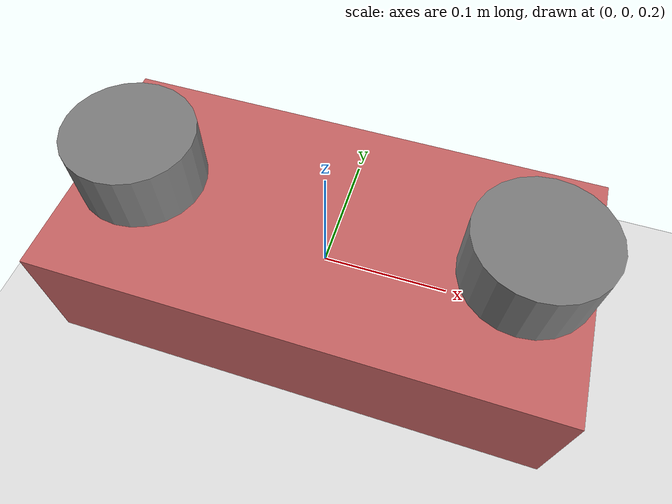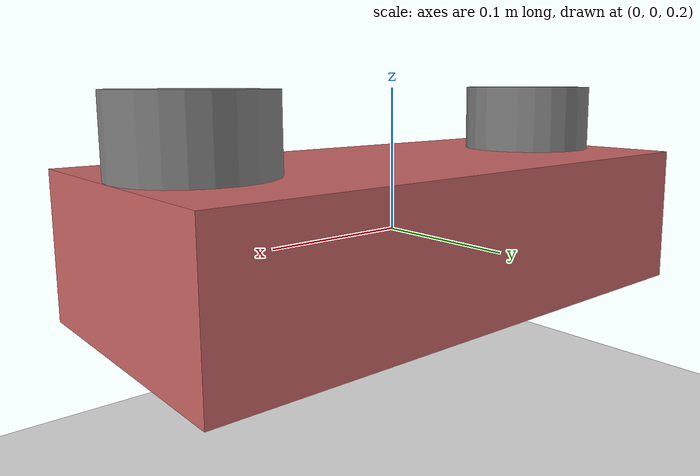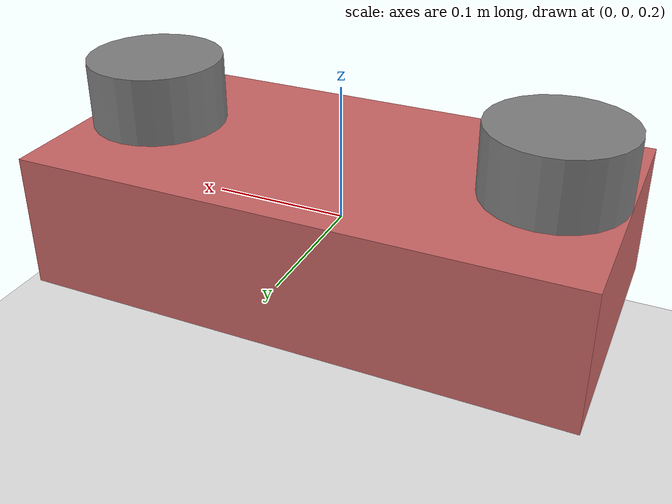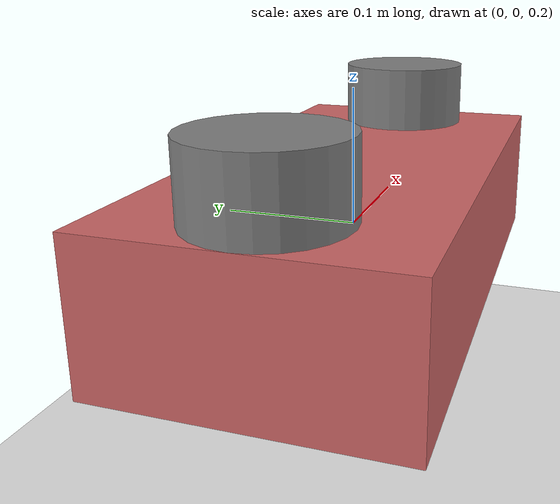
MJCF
<!-- simple_car.xml -->
<mujoco model="simple_car">
    <compiler angle="degree" inertiafromgeom="true"/>
    <option integrator="RK4" timestep="0.01"/>
    <worldbody>
        <!-- 车身 -->
        <body name="chassis" pos="0 0 0.2">
            <geom type="box" size="0.2 0.1 0.05" rgba="0.8 0.4 0.4 1"/>

            <!-- 前轮 -->
            <body name="wheel_front" pos="0.15 0 0">
                <joint name="joint_front" type="hinge" axis="0 1 0"/>
                <geom type="cylinder" size="0.05 0.02" fromto="0 0 0 0 0 0.1"/>
            </body>

            <!-- 后轮 -->
            <body name="wheel_back" pos="-0.15 0 0">
                <joint name="joint_back" type="hinge" axis="0 1 0"/>
                <geom type="cylinder" size="0.05 0.02" fromto="0 0 0 0 0 0.1"/>
            </body>
        </body>

        <!-- 地面 -->
        <geom name="floor" type="plane" pos="0 0 0" size="5 5 0.1" rgba="0.9 0.9 0.9 1"/>
    </worldbody>

    <actuator>
        <!-- 两个车轮的电机 -->
        <motor name="motor_front" joint="joint_front" ctrlrange="-1 1" gear="100"/>
        <motor name="motor_back"  joint="joint_back"  ctrlrange="-1 1" gear="100"/>
    </actuator>
</mujoco>
